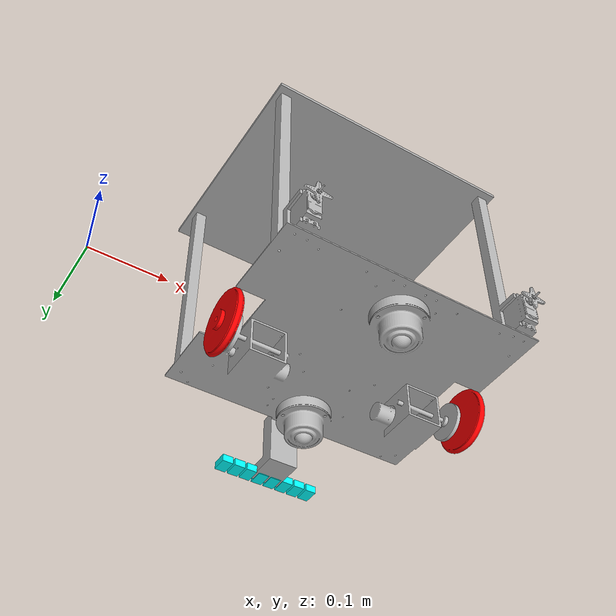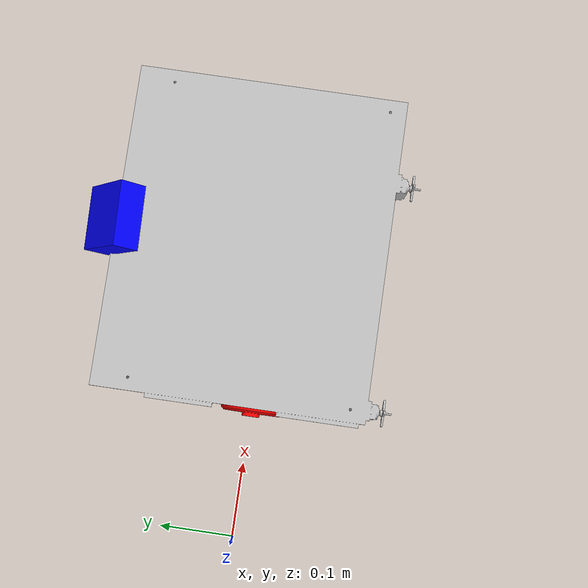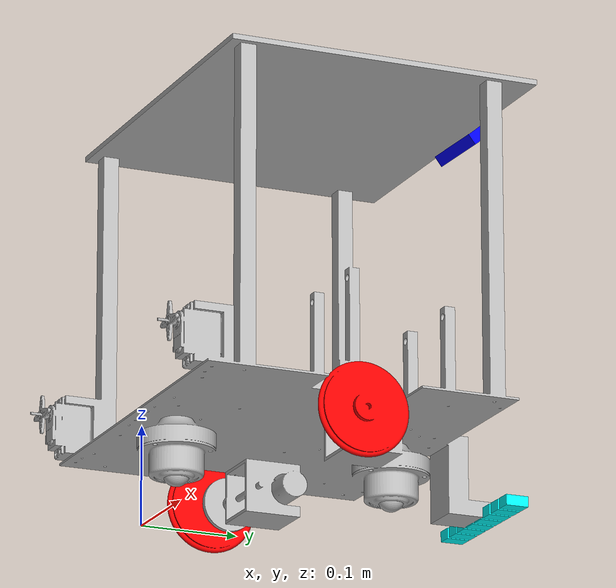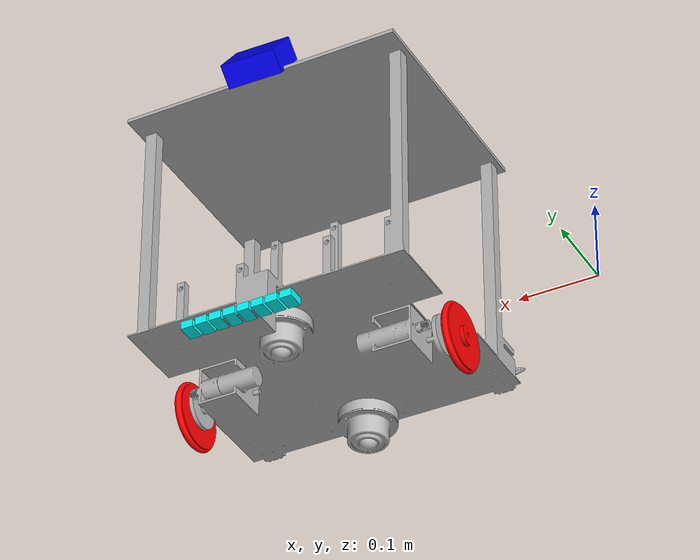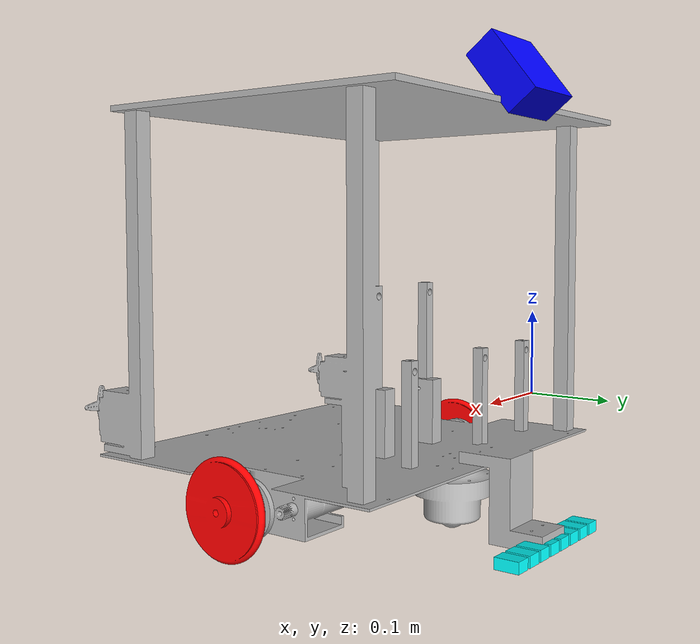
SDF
<?xml version="1.0" ?>
<sdf version="1.9">
  <model name="my_robot">
    <static>false</static>
    <plugin filename="libignition-gazebo-sensors-system.so"
      name="ignition::gazebo::systems::Sensors">
      <render_engine>ogre2</render_engine>
    </plugin>

    <plugin
        filename="libignition-gazebo-diff-drive-system.so"
        name="ignition::gazebo::systems::DiffDrive">
        <left_joint>left_wheel_joint</left_joint>
        <right_joint>right_wheel_joint</right_joint>
        <wheel_separation>0.36</wheel_separation>
        <wheel_radius>0.04</wheel_radius>

        <odom_publish_frequency>30</odom_publish_frequency>
        <topic>/cmd_vel</topic>
        <odom_topic>odometry</odom_topic>
        <frame_id>odom</frame_id>
        <child_frame_id>base_link</child_frame_id>
    </plugin>

    <plugin filename="libignition-gazebo-triggered-publisher-system.so"
            name="ignition::gazebo::systems::TriggeredPublisher">
        <input type="ignition.msgs.Int32" topic="/keyboard/keypress">
            <match field="data">16777235</match>
        </input>
        <output type="ignition.msgs.Twist" topic="/cmd_vel">
            linear: {x: 0.2}, angular: {z: 0.0}
        </output>
    </plugin>
    <plugin filename="libignition-gazebo-triggered-publisher-system.so"
            name="ignition::gazebo::systems::TriggeredPublisher">
        <input type="ignition.msgs.Int32" topic="/keyboard/keypress">
            <match field="data">16777237</match>
        </input>
        <output type="ignition.msgs.Twist" topic="/cmd_vel">
            linear: {x: -0.2}, angular: {z: 0.0}
        </output>
    </plugin>

    <plugin filename="libignition-gazebo-triggered-publisher-system.so"
            name="ignition::gazebo::systems::TriggeredPublisher">
        <input type="ignition.msgs.Int32" topic="/keyboard/keypress">
            <match field="data">16777236</match>
        </input>
        <output type="ignition.msgs.Twist" topic="/cmd_vel">
            linear: {x: 0.0}, angular: {z: -0.5}
        </output>
    </plugin>
    <plugin filename="libignition-gazebo-triggered-publisher-system.so"
            name="ignition::gazebo::systems::TriggeredPublisher">
        <input type="ignition.msgs.Int32" topic="/keyboard/keypress">
            <match field="data">16777234</match>
        </input>
        <output type="ignition.msgs.Twist" topic="/cmd_vel">
            linear: {x: 0.0}, angular: {z: 0.5}
        </output>
    </plugin>

    <link name="base_link">
      <pose>0.35 0 0 0 0 0</pose>
      <inertial>
        <mass>5.1</mass>
        <inertia>
          <ixx>0.1</ixx>
          <iyy>0.1</iyy>
          <izz>0.1</izz>
          <ixy>0</ixy>
          <ixz>0</ixz>
          <iyz>0</iyz>
        </inertia>
      </inertial>

      <collision name="collision">
        <geometry>
          <mesh>
            <scale>1 1 1</scale>
            <uri>model://robot/robo.stl</uri>
          </mesh>
        </geometry>
        <surface>
          <friction>
            <ode>
              <mu>1.0</mu>
              <mu2>1.0</mu2>
            </ode>
          </friction>
        </surface>
      </collision>

      <visual name="visual">
        <geometry>
          <mesh>
            <scale>1 1 1</scale>
            <uri>model://robot/robo.dae</uri>
          </mesh>
        </geometry>
      </visual>
    </link>

    <link name='left_wheel'>
        <pose relative_to="base_link">-0.18 0 -0.027 0 3.14 0</pose>
        <inertial>
            <mass>1</mass>
            <inertia>
                <ixx>0.043333</ixx>
                <ixy>0</ixy>
                <ixz>0</ixz>
                <iyy>0.043333</iyy>
                <iyz>0</iyz>
                <izz>0.08</izz>
            </inertia>
        </inertial>

        <visual name='visual'>
            <geometry>
                <mesh>
                  <scale>1 1 1</scale>
                  <uri>model://robot/wheel.dae</uri>
                </mesh>
            </geometry>
            <material>
                <ambient>1.0 0.0 0.0 1</ambient>
                <diffuse>1.0 0.0 0.0 1</diffuse>
                <specular>1.0 0.0 0.0 1</specular>
            </material>
        </visual>
        <collision name='collision'>
            <geometry>
                <mesh>
                    <scale>1 1 1</scale>
                    <uri>model://robot/wheel.stl</uri>
                </mesh>
            </geometry>
        </collision>
    </link>
    <joint name='left_wheel_joint' type='revolute'>
        <pose relative_to='left_wheel'/>
        <parent>base_link</parent>
        <child>left_wheel</child>
        <axis>
            <xyz expressed_in='__model__'>-1 0 0</xyz>
            <limit>
                <lower>-1.79769e+308</lower>    <upper>1.79769e+308</upper>     </limit>
        </axis>
    </joint>

    <link name='right_wheel'>
        <pose relative_to="base_link">0.18 0 -0.027 0 0 0</pose> <inertial>
            <mass>1</mass>
            <inertia>
                <ixx>0.043333</ixx>
                <ixy>0</ixy>
                <ixz>0</ixz>
                <iyy>0.043333</iyy>
                <iyz>0</iyz>
                <izz>0.08</izz>
            </inertia>
        </inertial>
        <visual name='visual'>
            <geometry>
                <mesh>
                    <scale>1 1 1</scale>
                    <uri>model://robot/wheel.dae</uri>
                </mesh>
            </geometry>
            <material>
                <ambient>1.0 0.0 0.0 1</ambient>
                <diffuse>1.0 0.0 0.0 1</diffuse>
                <specular>1.0 0.0 0.0 1</specular>
            </material>
        </visual>
        <collision name='collision'>
            <geometry>
                <mesh>
                    <scale>1 1 1</scale>
                    <uri>model://robot/wheel.stl</uri>
                </mesh>
            </geometry>
        </collision>
    </link>
    <joint name='right_wheel_joint' type='revolute'>
        <pose relative_to='right_wheel'/>
        <parent>base_link</parent>
        <child>right_wheel</child>
        <axis>
            <xyz expressed_in='__model__'>-1 0 0</xyz>
            <limit>
                <lower>-1.79769e+308</lower>    <upper>1.79769e+308</upper>     </limit>
        </axis>
    </joint>

    <link name="camera_link">
      <pose relative_to='__model__'>0.35 0.17 0.325 0 0.9 1.6</pose>
      <inertial>
        <mass>0.01</mass>
        <inertia>
          <ixx>0.0001</ixx>
          <iyy>0.0001</iyy>
          <izz>0.0001</izz>
          <ixy>0</ixy>
          <ixz>0</ixz>
          <iyz>0</iyz>
        </inertia>
      </inertial>
      <visual name="camera_visual">
        <geometry>
          <box><size>0.063 0.07 0.03</size></box>
        </geometry>
        <material>
          <diffuse>0 0 1 1</diffuse>
          <ambient>0 0 1 1</ambient>
        </material>
      </visual>
      <sensor name="camera_sensor" type="camera">
        <camera>
          <camera_info_topic>camera_info</camera_info_topic>
          <horizontal_fov>1.047</horizontal_fov>
          <image>
            <width>640</width>
            <height>480</height>
            <format>R8G8B8</format>
          </image>
          <clip>
            <near>0.1</near>
            <far>100</far>
          </clip>
        </camera>
        <topic>/camera_sensor</topic>
        <always_on>1</always_on>
        <update_rate>30</update_rate>
        <visualize>true</visualize>
      </sensor>
    </link>

    <joint name="camera_joint" type="fixed">
      <parent>base_link</parent>
      <child>camera_link</child>
    </joint>

    <link name="line_left4_link">
      <pose relative_to="base_link">-0.063 0.2 -0.061 0 0 0</pose>
      <inertial>
        <mass>0.001</mass>
        <inertia><ixx>1e-6</ixx><iyy>1e-6</iyy><izz>1e-6</izz><ixy>0</ixy><ixz>0</ixz><iyz>0</iyz></inertia>
      </inertial>
      <visual name="visual">
        <geometry><box><size>0.015 0.022 0.01</size></box></geometry>
        <material><diffuse>0.0 1.0 1.0 1.0</diffuse><ambient>0.0 1.0 1.0 1.0</ambient></material>
      </visual>
      <sensor name="line_left4" type="camera">
        <pose>0 0 0 0 1.57 0</pose>
        <camera>
          <horizontal_fov>0.5</horizontal_fov>
          <image><width>2</width><height>2</height><format>R8G8B8</format></image>
          <clip><near>0.01</near><far>0.2</far></clip>
        </camera>
        <always_on>1</always_on>
        <update_rate>30</update_rate>
        <topic>/line/left4</topic>
        <visualize>true</visualize>
      </sensor>
    </link>
    <joint name="line_left4_joint" type="fixed"><parent>base_link</parent><child>line_left4_link</child></joint>

    <link name="line_left3_link">
      <pose relative_to="base_link">-0.045 0.2 -0.061 0 0 0</pose>
      <inertial>
        <mass>0.001</mass>
        <inertia><ixx>1e-6</ixx><iyy>1e-6</iyy><izz>1e-6</izz><ixy>0</ixy><ixz>0</ixz><iyz>0</iyz></inertia>
      </inertial>
      <visual name="visual">
        <geometry><box><size>0.015 0.022 0.01</size></box></geometry>
        <material><diffuse>0.0 1.0 1.0 1.0</diffuse><ambient>0.0 1.0 1.0 1.0</ambient></material>
      </visual>
      <sensor name="line_left3" type="camera">
        <pose>0 0 0 0 1.57 0</pose>
        <camera>
          <horizontal_fov>0.5</horizontal_fov>
          <image><width>2</width><height>2</height><format>R8G8B8</format></image>
          <clip><near>0.01</near><far>0.2</far></clip>
        </camera>
        <always_on>1</always_on>
        <update_rate>30</update_rate>
        <topic>/line/left3</topic>
        <visualize>true</visualize>
      </sensor>
    </link>
    <joint name="line_left3_joint" type="fixed"><parent>base_link</parent><child>line_left3_link</child></joint>

    <link name="line_left2_link">
      <pose relative_to="base_link">-0.027 0.2 -0.061 0 0 0</pose>
      <inertial>
        <mass>0.001</mass>
        <inertia><ixx>1e-6</ixx><iyy>1e-6</iyy><izz>1e-6</izz><ixy>0</ixy><ixz>0</ixz><iyz>0</iyz></inertia>
      </inertial>
      <visual name="visual">
        <geometry><box><size>0.015 0.022 0.01</size></box></geometry>
        <material><diffuse>0.0 1.0 1.0 1.0</diffuse><ambient>0.0 1.0 1.0 1.0</ambient></material>
      </visual>
      <sensor name="line_left2" type="camera">
        <pose>0 0 0 0 1.57 0</pose>
        <camera>
          <horizontal_fov>0.5</horizontal_fov>
          <image><width>2</width><height>2</height><format>R8G8B8</format></image>
          <clip><near>0.01</near><far>0.2</far></clip>
        </camera>
        <always_on>1</always_on>
        <update_rate>30</update_rate>
        <topic>/line/left2</topic>
        <visualize>true</visualize>
      </sensor>
    </link>
    <joint name="line_left2_joint" type="fixed"><parent>base_link</parent><child>line_left2_link</child></joint>

    <link name="line_left1_link">
      <pose relative_to="base_link">-0.009 0.2 -0.061 0 0 0</pose>
      <inertial>
        <mass>0.001</mass>
        <inertia><ixx>1e-6</ixx><iyy>1e-6</iyy><izz>1e-6</izz><ixy>0</ixy><ixz>0</ixz><iyz>0</iyz></inertia>
      </inertial>
      <visual name="visual">
        <geometry><box><size>0.015 0.022 0.01</size></box></geometry>
        <material><diffuse>0.0 1.0 1.0 1.0</diffuse><ambient>0.0 1.0 1.0 1.0</ambient></material>
      </visual>
      <sensor name="line_left1" type="camera">
        <pose>0 0 0 0 1.57 0</pose>
        <camera>
          <horizontal_fov>0.5</horizontal_fov>
          <image><width>2</width><height>2</height><format>R8G8B8</format></image>
          <clip><near>0.01</near><far>0.2</far></clip>
        </camera>
        <always_on>1</always_on>
        <update_rate>30</update_rate>
        <topic>/line/left1</topic>
        <visualize>true</visualize>
      </sensor>
    </link>
    <joint name="line_left1_joint" type="fixed"><parent>base_link</parent><child>line_left1_link</child></joint>

    <link name="line_right1_link">
      <pose relative_to="base_link">0.009 0.2 -0.061 0 0 0</pose>
      <inertial>
        <mass>0.001</mass>
        <inertia><ixx>1e-6</ixx><iyy>1e-6</iyy><izz>1e-6</izz><ixy>0</ixy><ixz>0</ixz><iyz>0</iyz></inertia>
      </inertial>
      <visual name="visual">
        <geometry><box><size>0.015 0.022 0.01</size></box></geometry>
        <material><diffuse>0.0 1.0 1.0 1.0</diffuse><ambient>0.0 1.0 1.0 1.0</ambient></material>
      </visual>
      <sensor name="line_right1" type="camera">
        <pose>0 0 0 0 1.57 0</pose>
        <camera>
          <horizontal_fov>0.5</horizontal_fov>
          <image><width>2</width><height>2</height><format>R8G8B8</format></image>
          <clip><near>0.01</near><far>0.2</far></clip>
        </camera>
        <always_on>1</always_on>
        <update_rate>30</update_rate>
        <topic>/line/right1</topic>
        <visualize>true</visualize>
      </sensor>
    </link>
    <joint name="line_right1_joint" type="fixed"><parent>base_link</parent><child>line_right1_link</child></joint>

    <link name="line_right2_link">
      <pose relative_to="base_link">0.027 0.2 -0.061 0 0 0</pose>
      <inertial>
        <mass>0.001</mass>
        <inertia><ixx>1e-6</ixx><iyy>1e-6</iyy><izz>1e-6</izz><ixy>0</ixy><ixz>0</ixz><iyz>0</iyz></inertia>
      </inertial>
      <visual name="visual">
        <geometry><box><size>0.015 0.022 0.01</size></box></geometry>
        <material><diffuse>0.0 1.0 1.0 1.0</diffuse><ambient>0.0 1.0 1.0 1.0</ambient></material>
      </visual>
      <sensor name="line_right2" type="camera">
        <pose>0 0 0 0 1.57 0</pose>
        <camera>
          <horizontal_fov>0.5</horizontal_fov>
          <image><width>2</width><height>2</height><format>R8G8B8</format></image>
          <clip><near>0.01</near><far>0.2</far></clip>
        </camera>
        <always_on>1</always_on>
        <update_rate>30</update_rate>
        <topic>/line/right2</topic>
        <visualize>true</visualize>
      </sensor>
    </link>
    <joint name="line_right2_joint" type="fixed"><parent>base_link</parent><child>line_right2_link</child></joint>

    <link name="line_right3_link">
      <pose relative_to="base_link">0.045 0.2 -0.061 0 0 0</pose>
      <inertial>
        <mass>0.001</mass>
        <inertia><ixx>1e-6</ixx><iyy>1e-6</iyy><izz>1e-6</izz><ixy>0</ixy><ixz>0</ixz><iyz>0</iyz></inertia>
      </inertial>
      <visual name="visual">
        <geometry><box><size>0.015 0.022 0.01</size></box></geometry>
        <material><diffuse>0.0 1.0 1.0 1.0</diffuse><ambient>0.0 1.0 1.0 1.0</ambient></material>
      </visual>
      <sensor name="line_right3" type="camera">
        <pose>0 0 0 0 1.57 0</pose>
        <camera>
          <horizontal_fov>0.5</horizontal_fov>
          <image><width>2</width><height>2</height><format>R8G8B8</format></image>
          <clip><near>0.01</near><far>0.2</far></clip>
        </camera>
        <always_on>1</always_on>
        <update_rate>30</update_rate>
        <topic>/line/right3</topic>
        <visualize>true</visualize>
      </sensor>
    </link>
    <joint name="line_right3_joint" type="fixed"><parent>base_link</parent><child>line_right3_link</child></joint>

    <link name="line_right4_link">
      <pose relative_to="base_link">0.063 0.2 -0.061 0 0 0</pose>
      <inertial>
        <mass>0.001</mass>
        <inertia><ixx>1e-6</ixx><iyy>1e-6</iyy><izz>1e-6</izz><ixy>0</ixy><ixz>0</ixz><iyz>0</iyz></inertia>
      </inertial>
      <visual name="visual">
        <geometry><box><size>0.015 0.022 0.01</size></box></geometry>
        <material><diffuse>0.0 1.0 1.0 1.0</diffuse><ambient>0.0 1.0 1.0 1.0</ambient></material>
      </visual>
      <sensor name="line_right4" type="camera">
        <pose>0 0 0 0 1.57 0</pose>
        <camera>
          <horizontal_fov>0.5</horizontal_fov>
          <image><width>2</width><height>2</height><format>R8G8B8</format></image>
          <clip><near>0.01</near><far>0.2</far></clip>
        </camera>
        <always_on>1</always_on>
        <update_rate>30</update_rate>
        <topic>/line/right4</topic>
        <visualize>true</visualize>
      </sensor>
    </link>
    <joint name="line_right4_joint" type="fixed"><parent>base_link</parent><child>line_right4_link</child></joint>

  </model>
</sdf>
